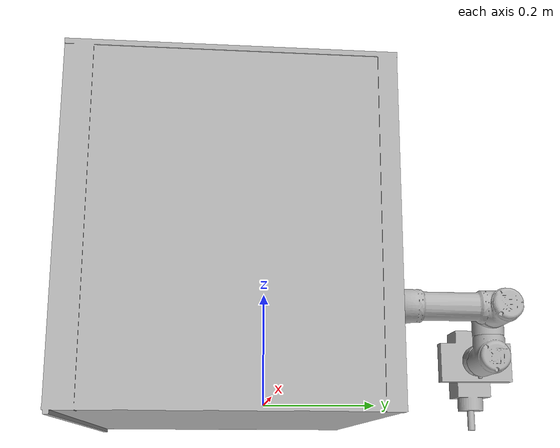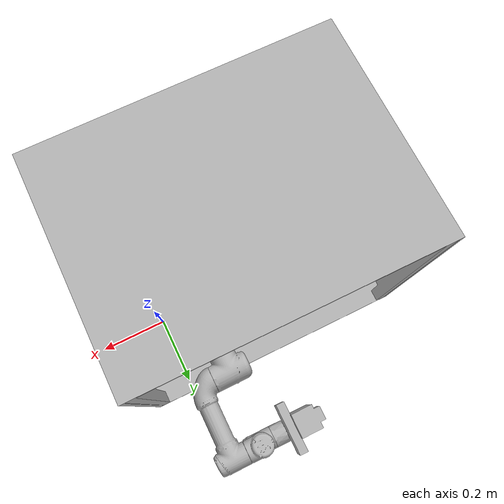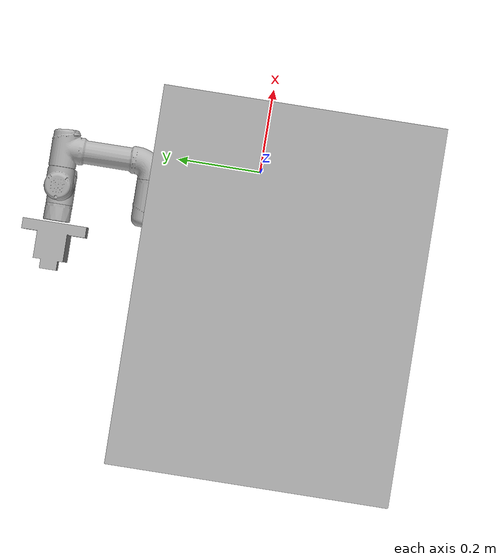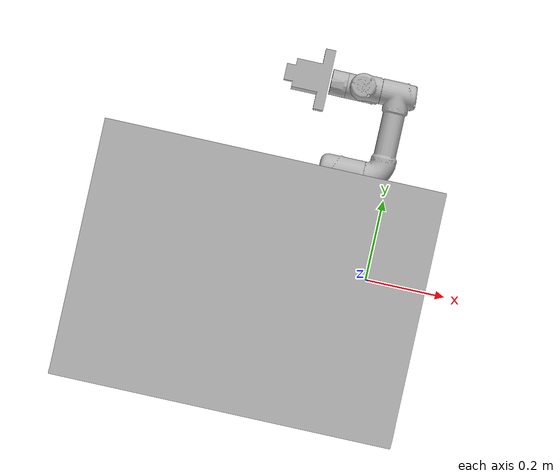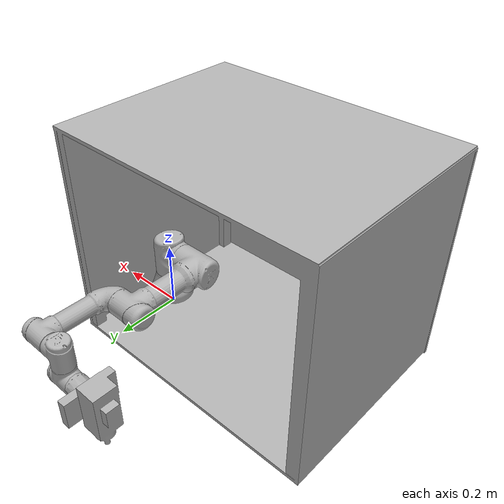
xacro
<?xml version="1.0"?>
<robot xmlns:xacro="http://ros.org/wiki/xacro"
       name="ur3" >

  <!-- common stuff -->
  <xacro:include filename="$(find ur_description)/urdf/common.gazebo.xacro" />

  <!-- ur3 -->
  <xacro:include filename="$(find ur_description)/urdf/ur3.urdf.xacro" />

  <!-- arm -->
  <xacro:ur3_robot prefix="" joint_limited="false"/>

  <!-- Set initial joint angles -->
  <gazebo>
    <plugin name="ur_initial_pose" filename="libInitialPosePlugin.so">
      <shoulder_pan_joint>-5.5</shoulder_pan_joint>
      <shoulder_lift_joint>-1.75</shoulder_lift_joint>
      <elbow_joint>-1.63</elbow_joint>
      <wrist_1_joint>3.34</wrist_1_joint>
      <wrist_2_joint>-1.0</wrist_2_joint>
      <wrist_3_joint>-3.1</wrist_3_joint>
    </plugin>
  </gazebo>

  <link name="world" />

  <joint name="world_joint" type="fixed">
    <parent link="world" />
    <child link = "base_link" />
    <origin xyz="0.0 0.0 0.038" rpy="0.0 0.0 0.0" />
  </joint>

</robot>

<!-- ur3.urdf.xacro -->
<robot xmlns:xacro="http://ros.org/wiki/xacro">

<!--
  Author: Felix Messmer
-->

  <xacro:include filename="$(find ur_description)/urdf/ur.transmission.xacro" />
  <xacro:include filename="$(find ur_description)/urdf/ur.gazebo.xacro" />

  <!-- Inertia parameters -->
  <xacro:property name="base_mass" value="2.0" />  <!-- This mass might be incorrect -->
  <xacro:property name="shoulder_mass" value="2.0" />
  <xacro:property name="upper_arm_mass" value="3.42" />
  <xacro:property name="forearm_mass" value="1.26" />
  <xacro:property name="wrist_1_mass" value="0.8" />
  <xacro:property name="wrist_2_mass" value="0.8" />
  <xacro:property name="wrist_3_mass" value="0.35" />

  <xacro:property name="shoulder_cog" value="0.0 -0.02 0.0" />
  <xacro:property name="upper_arm_cog" value="0.13 0.0 0.1157" />
  <xacro:property name="forearm_cog" value="0.05 0.0 0.0238" />
  <xacro:property name="wrist_1_cog" value="0.0 0.0 0.01" />
  <xacro:property name="wrist_2_cog" value="0.0 0.0 0.01" />
  <xacro:property name="wrist_3_cog" value="0.0 0.0 -0.02" />

  <!-- Kinematic model -->
  <!-- Properties from urcontrol.conf -->
  <xacro:property name="ur3_d1" value="0.1519" />
  <xacro:property name="ur3_a2" value="-0.24365" />
  <xacro:property name="ur3_a3" value="-0.21325" />
  <xacro:property name="ur3_d4" value="0.11235" />
  <xacro:property name="ur3_d5" value="0.08535" />
  <xacro:property name="ur3_d6" value="0.0819" />

  <!-- Arbitrary offsets for shoulder/elbow joints -->
  <xacro:property name="shoulder_offset" value="0.1198" />  <!-- measured from model -->
  <xacro:property name="elbow_offset" value="-0.0925" /> <!-- measured from model -->

  <!-- link lengths used in model -->
  <xacro:property name="shoulder_height" value="${ur3_d1}" />
  <xacro:property name="upper_arm_length" value="${-ur3_a2}" />
  <xacro:property name="forearm_length" value="${-ur3_a3}" />
  <xacro:property name="wrist_1_length" value="${ur3_d4 - elbow_offset - shoulder_offset}" />
  <xacro:property name="wrist_2_length" value="${ur3_d5}" />
  <xacro:property name="wrist_3_length" value="${ur3_d6}" />

  <xacro:macro name="cylinder_inertial" params="radius length mass *origin">
    <inertial>
      <mass value="${mass}" />
      <xacro:insert_block name="origin" />
      <inertia ixx="${0.0833333 * mass * (3 * radius * radius + length * length)}" ixy="0.0" ixz="0.0"
        iyy="${0.0833333 * mass * (3 * radius * radius + length * length)}" iyz="0.0"
        izz="${0.5 * mass * radius * radius}" />
    </inertial>
  </xacro:macro>

  <xacro:macro name="ur3_robot" params="prefix joint_limited">

    <link name="${prefix}base_link" >
      <visual>
        <geometry>
          <mesh filename="package://ur_description/meshes/ur3/visual/base.dae"/>
        </geometry>
        <material name="LightGrey">
          <color rgba="0.7 0.7 0.7 1.0"/>
        </material>
      </visual>
      <collision>
        <geometry>
          <mesh filename="package://ur_description/meshes/ur3/collision/base.stl"/>
        </geometry>
      </collision>
      <xacro:cylinder_inertial radius="0.075" length="0.038" mass="${base_mass}">
        <origin xyz="0.0 0.0 0.0" rpy="0 0 0" />
      </xacro:cylinder_inertial>
    </link>

    <joint name="${prefix}shoulder_pan_joint" type="revolute">
      <parent link="${prefix}base_link" />
      <child link = "${prefix}shoulder_link" />
      <origin xyz="0.0 0.0 ${shoulder_height}" rpy="0.0 0.0 1.57" />
      <axis xyz="0 0 1" />
      <xacro:unless value="${joint_limited}">
        <limit lower="${-2.0 * pi}" upper="${2.0 * pi}" effort="330.0" velocity="2.16"/>
      </xacro:unless>
      <xacro:if value="${joint_limited}">
        <limit lower="${-pi}" upper="${pi}" effort="330.0" velocity="2.16"/>
      </xacro:if>
      <dynamics damping="0.0" friction="0.0"/>
    </joint>

    <link name="${prefix}shoulder_link">
      <visual>
        <geometry>
          <mesh filename="package://ur_description/meshes/ur3/visual/shoulder.dae"/>
        </geometry>
        <material name="LightGrey">
          <color rgba="0.7 0.7 0.7 1.0"/>
        </material>
      </visual>
      <collision>
        <geometry>
          <mesh filename="package://ur_description/meshes/ur3/collision/shoulder.stl"/>
        </geometry>
      </collision>
      <xacro:cylinder_inertial radius="0.075" length="0.178" mass="${shoulder_mass}">
        <origin xyz="0.0 0.0 0.0" rpy="0 0 0" />
      </xacro:cylinder_inertial>
    </link>

    <joint name="${prefix}shoulder_lift_joint" type="revolute">
      <parent link="${prefix}shoulder_link" />
      <child link = "${prefix}upper_arm_link" />
      <origin xyz="0.0 ${shoulder_offset} 0.0" rpy="0.0 ${pi / 2.0} 0.0" />
      <axis xyz="0 1 0" />
      <xacro:unless value="${joint_limited}">
        <limit lower="${-2.2 * pi}" upper="${2.2 * pi}" effort="330.0" velocity="2.16"/>
      </xacro:unless>
      <xacro:if value="${joint_limited}">
        <limit lower="${-pi}" upper="${pi}" effort="330.0" velocity="2.16"/>
      </xacro:if>
      <dynamics damping="0.0" friction="0.0"/>
    </joint>

    <link name="${prefix}upper_arm_link">
      <visual>
        <geometry>
          <mesh filename="package://ur_description/meshes/ur3/visual/upperarm.dae"/>
        </geometry>
        <material name="LightGrey">
          <color rgba="0.7 0.7 0.7 1.0"/>
        </material>
      </visual>
      <collision>
        <geometry>
          <mesh filename="package://ur_description/meshes/ur3/collision/upperarm.stl"/>
        </geometry>
      </collision>
      <xacro:cylinder_inertial radius="0.075" length="${-ur3_a2}" mass="${upper_arm_mass}">
        <origin xyz="0.0 0.0 ${-ur3_a2/2.0}" rpy="0 0 0" />
      </xacro:cylinder_inertial>
    </link>

    <joint name="${prefix}elbow_joint" type="revolute">
      <parent link="${prefix}upper_arm_link" />
      <child link = "${prefix}forearm_link" />
      <origin xyz="0.0 ${elbow_offset} ${upper_arm_length}" rpy="0.0 0.0 0.0" />
      <axis xyz="0 1 0" />
      <xacro:unless value="${joint_limited}">
        <limit lower="${-pi}" upper="${pi}" effort="150.0" velocity="3.15"/>
      </xacro:unless>
      <xacro:if value="${joint_limited}">
        <limit lower="${-pi}" upper="${pi}" effort="150.0" velocity="3.15"/>
      </xacro:if>
      <dynamics damping="0.0" friction="0.0"/>
    </joint>

    <link name="${prefix}forearm_link">
      <visual>
         <geometry>
          <mesh filename="package://ur_description/meshes/ur3/visual/forearm.dae"/>
        </geometry>
        <material name="LightGrey">
          <color rgba="0.7 0.7 0.7 1.0"/>
        </material>
      </visual>
      <collision>
        <geometry>
          <mesh filename="package://ur_description/meshes/ur3/collision/forearm.stl"/>
        </geometry>
      </collision>
      <xacro:cylinder_inertial radius="0.075" length="${-ur3_a3}" mass="${forearm_mass}">
        <origin xyz="0.0 0.0 ${-ur3_a3/2.0}" rpy="0 0 0" />
      </xacro:cylinder_inertial>
    </link>

    <joint name="${prefix}wrist_1_joint" type="revolute">
      <parent link="${prefix}forearm_link" />
      <child link = "${prefix}wrist_1_link" />
      <origin xyz="0.0 0.0 ${forearm_length}" rpy="0.0 ${pi / 2.0} 0.0" />
      <axis xyz="0 1 0" />
      <xacro:unless value="${joint_limited}">
        <limit lower="${-2.0 * pi}" upper="${2.0 * pi}" effort="54.0" velocity="3.2"/>
      </xacro:unless>
      <xacro:if value="${joint_limited}">
        <limit lower="${-pi}" upper="${pi}" effort="54.0" velocity="3.2"/>
      </xacro:if>
      <dynamics damping="0.0" friction="0.0"/>
    </joint>

    <link name="${prefix}wrist_1_link">
      <visual>
        <geometry>
          <mesh filename="package://ur_description/meshes/ur3/visual/wrist1.dae"/>
        </geometry>
        <material name="LightGrey">
          <color rgba="0.7 0.7 0.7 1.0"/>
        </material>
      </visual>
      <collision>
        <geometry>
          <mesh filename="package://ur_description/meshes/ur3/collision/wrist1.stl"/>
        </geometry>
      </collision>
      <xacro:cylinder_inertial radius="0.075" length="0.12" mass="${wrist_1_mass}">
        <origin xyz="0.0 0.0 0.0" rpy="0 0 0" />
      </xacro:cylinder_inertial>
    </link>

    <joint name="${prefix}wrist_2_joint" type="revolute">
      <parent link="${prefix}wrist_1_link" />
      <child link = "${prefix}wrist_2_link" />
      <origin xyz="0.0 ${wrist_1_length} 0.0" rpy="0.0 0.0 0.0" />
      <axis xyz="0 0 1" />
      <xacro:unless value="${joint_limited}">
        <limit lower="${-2.0 * pi}" upper="${2.0 * pi}" effort="54.0" velocity="3.2"/>
      </xacro:unless>
      <xacro:if value="${joint_limited}">
        <limit lower="${-pi}" upper="${pi}" effort="54.0" velocity="3.2"/>
      </xacro:if>
      <dynamics damping="0.0" friction="0.0"/>
    </joint>

    <link name="${prefix}wrist_2_link">
      <visual>
        <geometry>
          <mesh filename="package://ur_description/meshes/ur3/visual/wrist2.dae"/>
        </geometry>
        <material name="LightGrey">
          <color rgba="0.7 0.7 0.7 1.0"/>
        </material>
      </visual>
      <collision>
        <geometry>
          <mesh filename="package://ur_description/meshes/ur3/collision/wrist2.stl"/>
        </geometry>
      </collision>
      <xacro:cylinder_inertial radius="0.075" length="0.12" mass="${wrist_2_mass}">
        <origin xyz="0.0 0.0 0.0" rpy="0 0 0" />
      </xacro:cylinder_inertial>
    </link>

    <joint name="${prefix}wrist_3_joint" type="revolute">
      <parent link="${prefix}wrist_2_link" />
      <child link = "${prefix}wrist_3_link" />
      <origin xyz="0.0 0.0 ${wrist_2_length}" rpy="0.0 0.0 0.0" />
      <axis xyz="0 1 0" />
      <xacro:unless value="${joint_limited}">
        <limit lower="${-2.0 * pi}" upper="${2.0 * pi}" effort="54.0" velocity="3.2"/>
      </xacro:unless>
      <xacro:if value="${joint_limited}">
        <limit lower="${-2.0* pi}" upper="${2.0*pi}" effort="54.0" velocity="3.2"/>
      </xacro:if>
      <dynamics damping="0.0" friction="0.0"/>
    </joint>

    <link name="${prefix}wrist_3_link">
      <visual>
        <geometry>
          <mesh filename="package://ur_description/meshes/ur3/visual/wrist3.dae"/>
        </geometry>
        <material name="LightGrey">
          <color rgba="0.7 0.7 0.7 1.0"/>
        </material>
      </visual>
      <collision>
        <geometry>
          <mesh filename="package://ur_description/meshes/ur3/collision/wrist3.stl"/>
        </geometry>
      </collision>
      <xacro:cylinder_inertial radius="0.075" length="0.12" mass="${wrist_3_mass}">
        <origin xyz="0.0 0.0 0.0" rpy="0 0 0" />
      </xacro:cylinder_inertial>
    </link>

    <joint name="${prefix}ee_fixed_joint" type="fixed">
      <parent link="${prefix}wrist_3_link" />
      <child link = "${prefix}ee_link" />
      <origin xyz="0.0 ${wrist_3_length} 0.0" rpy="0.0 0.0 ${pi/2.0}" />
    </joint>

    <link name="${prefix}front_link">
      <collision>
        <geometry>
          <box size="0.8 0.01 0.7"/>
        </geometry>
        <origin rpy="0 0 0" xyz="-0.23 0.25 0.35"/>
      </collision>
    </link>

    <joint name="${prefix}front_panel_joint" type="fixed">
      <parent link="${prefix}world" />
      <child link = "${prefix}front_link" />
      <origin xyz="0.0 0.0 0.0" rpy="0.0 0.0 0.0" />
    </joint>

    <link name="${prefix}ee_link">
      <collision>
        <geometry>
          <box size="0.01 0.01 0.01"/>
        </geometry>
        <origin rpy="0 0 0" xyz="-0.01 0 0"/>
      </collision>
    </link>

    <link name="${prefix}spindle">
        <visual>
	   	     <geometry>
	          <mesh filename="package://ur_description/meshes/ur3/visual/spindle.stl"/>
	        </geometry>
	        <material name="LightGrey">
	          <color rgba="0.7 0.7 0.7 1.0"/>
	        </material>
      	</visual>
      	<collision>
	        <geometry>
	          <mesh filename="package://ur_description/meshes/ur3/visual/spindle.stl"/>
	        </geometry>
      	</collision>
  	</link>

    <joint name="${prefix}spindle" type="fixed">
	      <origin xyz="0 0 0" rpy="0 0 3.14"/>
	      <parent link="${prefix}tool0"/>
	      <child link="${prefix}spindle"/>
	  </joint>

    <link name="${prefix}box_link">
        <visual>
	   	     <geometry>
	          <mesh filename="package://ur_description/meshes/ur3/visual/box.stl"/>
	        </geometry>
	        <material name="LightGrey">
	          <color rgba="0.7 0.7 0.7 1.0"/>
	        </material>
      	</visual>
      	<collision>
	        <geometry>
	          <mesh filename="package://ur_description/meshes/ur3/visual/box.stl"/>
	        </geometry>
      	</collision>
  	</link>

    <joint name="${prefix}box_joint" type="fixed">
	      <origin xyz="0 0 0" rpy="0 0 0"/>
	      <parent link="${prefix}world"/>
	      <child link="${prefix}box_link"/>
	</joint>

    <xacro:ur_arm_transmission prefix="${prefix}" />
    <xacro:ur_arm_gazebo prefix="${prefix}" />

    <!-- ROS base_link to UR 'Base' Coordinates transform -->
    <link name="${prefix}base"/>
    <joint name="${prefix}base_link-base_fixed_joint" type="fixed">
      <!-- NOTE: this rotation is only needed as long as base_link itself is
                 not corrected wrt the real robot (ie: rotated over 180
                 degrees)
      -->
      <origin xyz="0 0 0" rpy="0 0 ${-pi}"/>
      <parent link="${prefix}base_link"/>
      <child link="${prefix}base"/>
    </joint>

    <!-- Frame coincident with all-zeros TCP on UR controller -->
    <link name="${prefix}tool0"/>
    <joint name="${prefix}wrist_3_link-tool0_fixed_joint" type="fixed">
      <origin xyz="0 ${wrist_3_length} 0" rpy="${pi/-2.0} 0 0"/>
      <parent link="${prefix}wrist_3_link"/>
      <child link="${prefix}tool0"/>
    </joint>

  </xacro:macro>
</robot>
